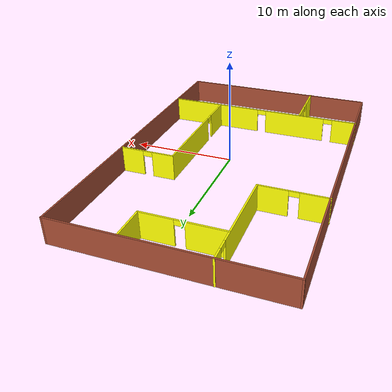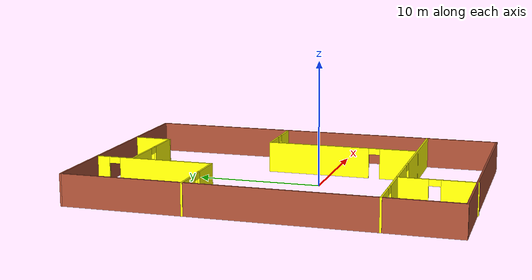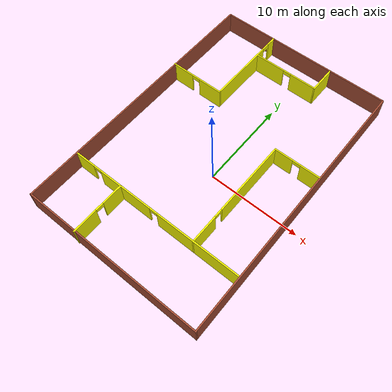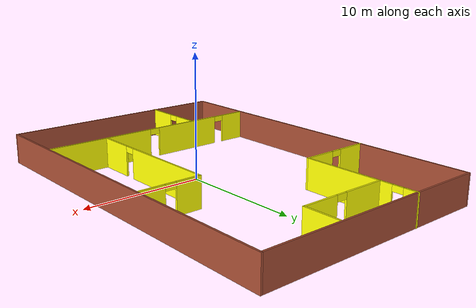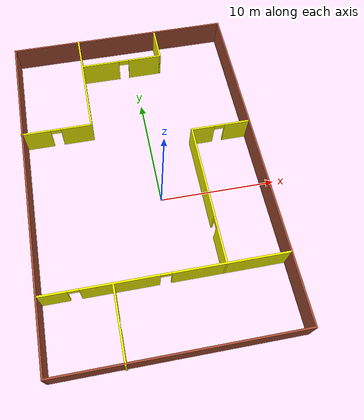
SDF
<?xml version='1.0'?>
<sdf version='1.6'>
  <model name='mybuilding'>
    <pose frame=''>-1.09176 1.85565 0 0 -0 0</pose>
    <link name='Wall_0'>
      <collision name='Wall_0_Collision'>
        <geometry>
          <box>
            <size>20 0.15 2.5</size>
          </box>
        </geometry>
        <pose frame=''>0 0 1.25 0 -0 0</pose>
      </collision>
      <visual name='Wall_0_Visual'>
        <pose frame=''>0 0 1.25 0 -0 0</pose>
        <geometry>
          <box>
            <size>20 0.15 2.5</size>
          </box>
        </geometry>
        <material>
          <script>
            <uri>file://media/materials/scripts/gazebo.material</uri>
            <name>Gazebo/Bricks</name>
          </script>
          <ambient>1 1 1 1</ambient>
        </material>
        <meta>
          <layer>0</layer>
        </meta>
      </visual>
      <pose frame=''>0.024189 14.9513 0 0 -0 0</pose>
    </link>
    <link name='Wall_12'>
      <pose frame=''>-6.89919 5.37489 0 0 -0 3.14159</pose>
      <visual name='Wall_12_Visual_0'>
        <pose frame=''>-1.74309 0 1.25 0 -0 0</pose>
        <geometry>
          <box>
            <size>2.76382 0.15 2.5</size>
          </box>
        </geometry>
        <material>
          <script>
            <uri>file://media/materials/scripts/gazebo.material</uri>
            <name>Gazebo/Grey</name>
          </script>
          <ambient>1 1 0 1</ambient>
        </material>
        <meta>
          <layer>0</layer>
        </meta>
      </visual>
      <collision name='Wall_12_Collision_0'>
        <geometry>
          <box>
            <size>2.76382 0.15 2.5</size>
          </box>
        </geometry>
        <pose frame=''>-1.74309 0 1.25 0 -0 0</pose>
      </collision>
      <visual name='Wall_12_Visual_1'>
        <pose frame=''>1.83191 0 1.25 0 -0 0</pose>
        <geometry>
          <box>
            <size>2.58618 0.15 2.5</size>
          </box>
        </geometry>
        <material>
          <script>
            <uri>file://media/materials/scripts/gazebo.material</uri>
            <name>Gazebo/Grey</name>
          </script>
          <ambient>1 1 0 1</ambient>
        </material>
        <meta>
          <layer>0</layer>
        </meta>
      </visual>
      <collision name='Wall_12_Collision_1'>
        <geometry>
          <box>
            <size>2.58618 0.15 2.5</size>
          </box>
        </geometry>
        <pose frame=''>1.83191 0 1.25 0 -0 0</pose>
      </collision>
      <visual name='Wall_12_Visual_2'>
        <pose frame=''>0.088824 0 2.25 0 -0 0</pose>
        <geometry>
          <box>
            <size>0.9 0.15 0.5</size>
          </box>
        </geometry>
        <material>
          <script>
            <uri>file://media/materials/scripts/gazebo.material</uri>
            <name>Gazebo/Grey</name>
          </script>
          <ambient>1 1 0 1</ambient>
        </material>
        <meta>
          <layer>0</layer>
        </meta>
      </visual>
      <collision name='Wall_12_Collision_2'>
        <geometry>
          <box>
            <size>0.9 0.15 0.5</size>
          </box>
        </geometry>
        <pose frame=''>0.088824 0 2.25 0 -0 0</pose>
      </collision>
    </link>
    <link name='Wall_14'>
      <pose frame=''>-0.12099 11.9425 0 0 -0 0</pose>
      <visual name='Wall_14_Visual_0'>
        <pose frame=''>-1.99568 0 1.25 0 -0 0</pose>
        <geometry>
          <box>
            <size>3.50863 0.15 2.5</size>
          </box>
        </geometry>
        <material>
          <script>
            <uri>file://media/materials/scripts/gazebo.material</uri>
            <name>Gazebo/Grey</name>
          </script>
          <ambient>1 1 0 1</ambient>
        </material>
        <meta>
          <layer>0</layer>
        </meta>
      </visual>
      <collision name='Wall_14_Collision_0'>
        <geometry>
          <box>
            <size>3.50863 0.15 2.5</size>
          </box>
        </geometry>
        <pose frame=''>-1.99568 0 1.25 0 -0 0</pose>
      </collision>
      <visual name='Wall_14_Visual_1'>
        <pose frame=''>2.20431 0 1.25 0 -0 0</pose>
        <geometry>
          <box>
            <size>3.09137 0.15 2.5</size>
          </box>
        </geometry>
        <material>
          <script>
            <uri>file://media/materials/scripts/gazebo.material</uri>
            <name>Gazebo/Grey</name>
          </script>
          <ambient>1 1 0 1</ambient>
        </material>
        <meta>
          <layer>0</layer>
        </meta>
      </visual>
      <collision name='Wall_14_Collision_1'>
        <geometry>
          <box>
            <size>3.09137 0.15 2.5</size>
          </box>
        </geometry>
        <pose frame=''>2.20431 0 1.25 0 -0 0</pose>
      </collision>
      <visual name='Wall_14_Visual_2'>
        <pose frame=''>0.208629 0 2.25 0 -0 0</pose>
        <geometry>
          <box>
            <size>0.9 0.15 0.5</size>
          </box>
        </geometry>
        <material>
          <script>
            <uri>file://media/materials/scripts/gazebo.material</uri>
            <name>Gazebo/Grey</name>
          </script>
          <ambient>1 1 0 1</ambient>
        </material>
        <meta>
          <layer>0</layer>
        </meta>
      </visual>
      <collision name='Wall_14_Collision_2'>
        <geometry>
          <box>
            <size>0.9 0.15 0.5</size>
          </box>
        </geometry>
        <pose frame=''>0.208629 0 2.25 0 -0 0</pose>
      </collision>
    </link>
    <link name='Wall_19'>
      <collision name='Wall_19_Collision'>
        <geometry>
          <box>
            <size>3.1 0.15 2.5</size>
          </box>
        </geometry>
        <pose frame=''>0 0 1.25 0 -0 0</pose>
      </collision>
      <visual name='Wall_19_Visual'>
        <pose frame=''>0 0 1.25 0 -0 0</pose>
        <geometry>
          <box>
            <size>3.1 0.15 2.5</size>
          </box>
        </geometry>
        <material>
          <script>
            <uri>file://media/materials/scripts/gazebo.material</uri>
            <name>Gazebo/Grey</name>
          </script>
          <ambient>1 1 0 1</ambient>
        </material>
        <meta>
          <layer>0</layer>
        </meta>
      </visual>
      <pose frame=''>3.55401 13.4175 0 0 -0 1.5708</pose>
    </link>
    <link name='Wall_21'>
      <pose frame=''>0.010964 -9.07169 0 0 -0 0</pose>
      <visual name='Wall_21_Visual_0'>
        <pose frame=''>-8.77769 0 1.25 0 -0 0</pose>
        <geometry>
          <box>
            <size>2.44462 0.15 2.5</size>
          </box>
        </geometry>
        <material>
          <script>
            <uri>file://media/materials/scripts/gazebo.material</uri>
            <name>Gazebo/Grey</name>
          </script>
          <ambient>1 1 0 1</ambient>
        </material>
        <meta>
          <layer>0</layer>
        </meta>
      </visual>
      <collision name='Wall_21_Collision_0'>
        <geometry>
          <box>
            <size>2.44462 0.15 2.5</size>
          </box>
        </geometry>
        <pose frame=''>-8.77769 0 1.25 0 -0 0</pose>
      </collision>
      <visual name='Wall_21_Visual_1'>
        <pose frame=''>-3.54095 0 1.25 0 -0 0</pose>
        <geometry>
          <box>
            <size>6.22885 0.15 2.5</size>
          </box>
        </geometry>
        <material>
          <script>
            <uri>file://media/materials/scripts/gazebo.material</uri>
            <name>Gazebo/Grey</name>
          </script>
          <ambient>1 1 0 1</ambient>
        </material>
        <meta>
          <layer>0</layer>
        </meta>
      </visual>
      <collision name='Wall_21_Collision_1'>
        <geometry>
          <box>
            <size>6.22885 0.15 2.5</size>
          </box>
        </geometry>
        <pose frame=''>-3.54095 0 1.25 0 -0 0</pose>
      </collision>
      <visual name='Wall_21_Visual_2'>
        <pose frame=''>5.23674 0 1.25 0 -0 0</pose>
        <geometry>
          <box>
            <size>9.52653 0.15 2.5</size>
          </box>
        </geometry>
        <material>
          <script>
            <uri>file://media/materials/scripts/gazebo.material</uri>
            <name>Gazebo/Grey</name>
          </script>
          <ambient>1 1 0 1</ambient>
        </material>
        <meta>
          <layer>0</layer>
        </meta>
      </visual>
      <collision name='Wall_21_Collision_2'>
        <geometry>
          <box>
            <size>9.52653 0.15 2.5</size>
          </box>
        </geometry>
        <pose frame=''>5.23674 0 1.25 0 -0 0</pose>
      </collision>
      <visual name='Wall_21_Visual_3'>
        <pose frame=''>-7.10538 0 2.25 0 -0 0</pose>
        <geometry>
          <box>
            <size>0.9 0.15 0.5</size>
          </box>
        </geometry>
        <material>
          <script>
            <uri>file://media/materials/scripts/gazebo.material</uri>
            <name>Gazebo/Grey</name>
          </script>
          <ambient>1 1 0 1</ambient>
        </material>
        <meta>
          <layer>0</layer>
        </meta>
      </visual>
      <collision name='Wall_21_Collision_3'>
        <geometry>
          <box>
            <size>0.9 0.15 0.5</size>
          </box>
        </geometry>
        <pose frame=''>-7.10538 0 2.25 0 -0 0</pose>
      </collision>
      <visual name='Wall_21_Visual_4'>
        <pose frame=''>0.023474 0 2.25 0 -0 0</pose>
        <geometry>
          <box>
            <size>0.9 0.15 0.5</size>
          </box>
        </geometry>
        <material>
          <script>
            <uri>file://media/materials/scripts/gazebo.material</uri>
            <name>Gazebo/Grey</name>
          </script>
          <ambient>1 1 0 1</ambient>
        </material>
        <meta>
          <layer>0</layer>
        </meta>
      </visual>
      <collision name='Wall_21_Collision_4'>
        <geometry>
          <box>
            <size>0.9 0.15 0.5</size>
          </box>
        </geometry>
        <pose frame=''>0.023474 0 2.25 0 -0 0</pose>
      </collision>
    </link>
    <link name='Wall_23'>
      <pose frame=''>-4.06199 -12.0499 0 0 0 -1.5708</pose>
      <visual name='Wall_23_Visual_0'>
        <pose frame=''>-1.83089 0 1.25 0 -0 0</pose>
        <geometry>
          <box>
            <size>2.33822 0.15 2.5</size>
          </box>
        </geometry>
        <material>
          <script>
            <uri>file://media/materials/scripts/gazebo.material</uri>
            <name>Gazebo/Grey</name>
          </script>
          <ambient>1 1 0 1</ambient>
        </material>
        <meta>
          <layer>0</layer>
        </meta>
      </visual>
      <collision name='Wall_23_Collision_0'>
        <geometry>
          <box>
            <size>2.33822 0.15 2.5</size>
          </box>
        </geometry>
        <pose frame=''>-1.83089 0 1.25 0 -0 0</pose>
      </collision>
      <visual name='Wall_23_Visual_1'>
        <pose frame=''>1.61911 0 1.25 0 -0 0</pose>
        <geometry>
          <box>
            <size>2.76178 0.15 2.5</size>
          </box>
        </geometry>
        <material>
          <script>
            <uri>file://media/materials/scripts/gazebo.material</uri>
            <name>Gazebo/Grey</name>
          </script>
          <ambient>1 1 0 1</ambient>
        </material>
        <meta>
          <layer>0</layer>
        </meta>
      </visual>
      <collision name='Wall_23_Collision_1'>
        <geometry>
          <box>
            <size>2.76178 0.15 2.5</size>
          </box>
        </geometry>
        <pose frame=''>1.61911 0 1.25 0 -0 0</pose>
      </collision>
      <visual name='Wall_23_Visual_2'>
        <pose frame=''>-0.21178 0 2.25 0 -0 0</pose>
        <geometry>
          <box>
            <size>0.9 0.15 0.5</size>
          </box>
        </geometry>
        <material>
          <script>
            <uri>file://media/materials/scripts/gazebo.material</uri>
            <name>Gazebo/Grey</name>
          </script>
          <ambient>1 1 0 1</ambient>
        </material>
        <meta>
          <layer>0</layer>
        </meta>
      </visual>
      <collision name='Wall_23_Collision_2'>
        <geometry>
          <box>
            <size>0.9 0.15 0.5</size>
          </box>
        </geometry>
        <pose frame=''>-0.21178 0 2.25 0 -0 0</pose>
      </collision>
    </link>
    <link name='Wall_25'>
      <pose frame=''>4.76927 -2.89669 0 0 -0 1.5708</pose>
      <visual name='Wall_25_Visual_0'>
        <pose frame=''>-4.68189 0 1.25 0 -0 0</pose>
        <geometry>
          <box>
            <size>3.13623 0.15 2.5</size>
          </box>
        </geometry>
        <material>
          <script>
            <uri>file://media/materials/scripts/gazebo.material</uri>
            <name>Gazebo/Grey</name>
          </script>
          <ambient>1 1 0 1</ambient>
        </material>
        <meta>
          <layer>0</layer>
        </meta>
      </visual>
      <collision name='Wall_25_Collision_0'>
        <geometry>
          <box>
            <size>3.13623 0.15 2.5</size>
          </box>
        </geometry>
        <pose frame=''>-4.68189 0 1.25 0 -0 0</pose>
      </collision>
      <visual name='Wall_25_Visual_1'>
        <pose frame=''>2.01811 0 1.25 0 -0 0</pose>
        <geometry>
          <box>
            <size>8.46377 0.15 2.5</size>
          </box>
        </geometry>
        <material>
          <script>
            <uri>file://media/materials/scripts/gazebo.material</uri>
            <name>Gazebo/Grey</name>
          </script>
          <ambient>1 1 0 1</ambient>
        </material>
        <meta>
          <layer>0</layer>
        </meta>
      </visual>
      <collision name='Wall_25_Collision_1'>
        <geometry>
          <box>
            <size>8.46377 0.15 2.5</size>
          </box>
        </geometry>
        <pose frame=''>2.01811 0 1.25 0 -0 0</pose>
      </collision>
      <visual name='Wall_25_Visual_2'>
        <pose frame=''>-2.66377 0 2.25 0 -0 0</pose>
        <geometry>
          <box>
            <size>0.9 0.15 0.5</size>
          </box>
        </geometry>
        <material>
          <script>
            <uri>file://media/materials/scripts/gazebo.material</uri>
            <name>Gazebo/Grey</name>
          </script>
          <ambient>1 1 0 1</ambient>
        </material>
        <meta>
          <layer>0</layer>
        </meta>
      </visual>
      <collision name='Wall_25_Collision_2'>
        <geometry>
          <box>
            <size>0.9 0.15 0.5</size>
          </box>
        </geometry>
        <pose frame=''>-2.66377 0 2.25 0 -0 0</pose>
      </collision>
    </link>
    <link name='Wall_26'>
      <pose frame=''>7.31927 3.27831 0 0 -0 0</pose>
      <visual name='Wall_26_Visual_0'>
        <pose frame=''>-1.56229 0 1.25 0 -0 0</pose>
        <geometry>
          <box>
            <size>2.12542 0.15 2.5</size>
          </box>
        </geometry>
        <material>
          <script>
            <uri>file://media/materials/scripts/gazebo.material</uri>
            <name>Gazebo/Grey</name>
          </script>
          <ambient>1 1 0 1</ambient>
        </material>
        <meta>
          <layer>0</layer>
        </meta>
      </visual>
      <collision name='Wall_26_Collision_0'>
        <geometry>
          <box>
            <size>2.12542 0.15 2.5</size>
          </box>
        </geometry>
        <pose frame=''>-1.56229 0 1.25 0 -0 0</pose>
      </collision>
      <visual name='Wall_26_Visual_1'>
        <pose frame=''>1.51271 0 1.25 0 -0 0</pose>
        <geometry>
          <box>
            <size>2.22458 0.15 2.5</size>
          </box>
        </geometry>
        <material>
          <script>
            <uri>file://media/materials/scripts/gazebo.material</uri>
            <name>Gazebo/Grey</name>
          </script>
          <ambient>1 1 0 1</ambient>
        </material>
        <meta>
          <layer>0</layer>
        </meta>
      </visual>
      <collision name='Wall_26_Collision_1'>
        <geometry>
          <box>
            <size>2.22458 0.15 2.5</size>
          </box>
        </geometry>
        <pose frame=''>1.51271 0 1.25 0 -0 0</pose>
      </collision>
      <visual name='Wall_26_Visual_2'>
        <pose frame=''>-0.049581 0 2.25 0 -0 0</pose>
        <geometry>
          <box>
            <size>0.9 0.15 0.5</size>
          </box>
        </geometry>
        <material>
          <script>
            <uri>file://media/materials/scripts/gazebo.material</uri>
            <name>Gazebo/Grey</name>
          </script>
          <ambient>1 1 0 1</ambient>
        </material>
        <meta>
          <layer>0</layer>
        </meta>
      </visual>
      <collision name='Wall_26_Collision_2'>
        <geometry>
          <box>
            <size>0.9 0.15 0.5</size>
          </box>
        </geometry>
        <pose frame=''>-0.049581 0 2.25 0 -0 0</pose>
      </collision>
    </link>
    <link name='Wall_4'>
      <collision name='Wall_4_Collision'>
        <geometry>
          <box>
            <size>30 0.15 2.5</size>
          </box>
        </geometry>
        <pose frame=''>0 0 1.25 0 -0 0</pose>
      </collision>
      <visual name='Wall_4_Visual'>
        <pose frame=''>0 0 1.25 0 -0 0</pose>
        <geometry>
          <box>
            <size>30 0.15 2.5</size>
          </box>
        </geometry>
        <material>
          <script>
            <uri>file://media/materials/scripts/gazebo.material</uri>
            <name>Gazebo/Bricks</name>
          </script>
          <ambient>1 1 1 1</ambient>
        </material>
        <meta>
          <layer>0</layer>
        </meta>
      </visual>
      <pose frame=''>-9.90081 0.026323 0 0 0 -1.5708</pose>
    </link>
    <link name='Wall_6'>
      <collision name='Wall_6_Collision'>
        <geometry>
          <box>
            <size>30 0.15 2.5</size>
          </box>
        </geometry>
        <pose frame=''>0 0 1.25 0 -0 0</pose>
      </collision>
      <visual name='Wall_6_Visual'>
        <pose frame=''>0 0 1.25 0 -0 0</pose>
        <geometry>
          <box>
            <size>30 0.15 2.5</size>
          </box>
        </geometry>
        <material>
          <script>
            <uri>file://media/materials/scripts/gazebo.material</uri>
            <name>Gazebo/Bricks</name>
          </script>
          <ambient>1 1 1 1</ambient>
        </material>
        <meta>
          <layer>0</layer>
        </meta>
      </visual>
      <pose frame=''>9.94919 0.026323 0 0 0 -1.5708</pose>
    </link>
    <link name='Wall_7'>
      <collision name='Wall_7_Collision'>
        <geometry>
          <box>
            <size>20 0.15 2.5</size>
          </box>
        </geometry>
        <pose frame=''>0 0 1.25 0 -0 0</pose>
      </collision>
      <visual name='Wall_7_Visual'>
        <pose frame=''>0 0 1.25 0 -0 0</pose>
        <geometry>
          <box>
            <size>20 0.15 2.5</size>
          </box>
        </geometry>
        <material>
          <script>
            <uri>file://media/materials/scripts/gazebo.material</uri>
            <name>Gazebo/Bricks</name>
          </script>
          <ambient>1 1 1 1</ambient>
        </material>
        <meta>
          <layer>0</layer>
        </meta>
      </visual>
      <pose frame=''>0.024189 -14.8987 0 0 -0 3.14159</pose>
    </link>
    <link name='Wall_9'>
      <pose frame=''>-3.84919 10.1749 0 0 0 -1.5708</pose>
      <visual name='Wall_9_Visual_0'>
        <pose frame=''>-4.29109 0 1.25 0 -0 0</pose>
        <geometry>
          <box>
            <size>1.16781 0.15 2.5</size>
          </box>
        </geometry>
        <material>
          <script>
            <uri>file://media/materials/scripts/gazebo.material</uri>
            <name>Gazebo/Grey</name>
          </script>
          <ambient>1 1 0 1</ambient>
        </material>
        <meta>
          <layer>0</layer>
        </meta>
      </visual>
      <collision name='Wall_9_Collision_0'>
        <geometry>
          <box>
            <size>1.16781 0.15 2.5</size>
          </box>
        </geometry>
        <pose frame=''>-4.29109 0 1.25 0 -0 0</pose>
      </collision>
      <visual name='Wall_9_Visual_1'>
        <pose frame=''>1.03391 0 1.25 0 -0 0</pose>
        <geometry>
          <box>
            <size>7.68219 0.15 2.5</size>
          </box>
        </geometry>
        <material>
          <script>
            <uri>file://media/materials/scripts/gazebo.material</uri>
            <name>Gazebo/Grey</name>
          </script>
          <ambient>1 1 0 1</ambient>
        </material>
        <meta>
          <layer>0</layer>
        </meta>
      </visual>
      <collision name='Wall_9_Collision_1'>
        <geometry>
          <box>
            <size>7.68219 0.15 2.5</size>
          </box>
        </geometry>
        <pose frame=''>1.03391 0 1.25 0 -0 0</pose>
      </collision>
      <visual name='Wall_9_Visual_2'>
        <pose frame=''>-3.25719 0 2.25 0 -0 0</pose>
        <geometry>
          <box>
            <size>0.9 0.15 0.5</size>
          </box>
        </geometry>
        <material>
          <script>
            <uri>file://media/materials/scripts/gazebo.material</uri>
            <name>Gazebo/Grey</name>
          </script>
          <ambient>1 1 0 1</ambient>
        </material>
        <meta>
          <layer>0</layer>
        </meta>
      </visual>
      <collision name='Wall_9_Collision_2'>
        <geometry>
          <box>
            <size>0.9 0.15 0.5</size>
          </box>
        </geometry>
        <pose frame=''>-3.25719 0 2.25 0 -0 0</pose>
      </collision>
    </link>
    <static>1</static>
  </model>
</sdf>
